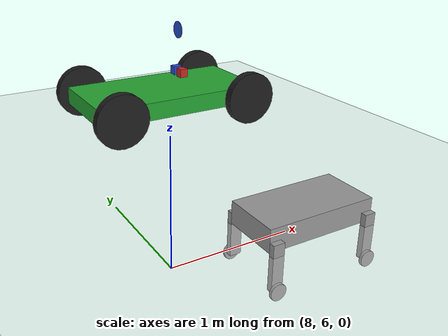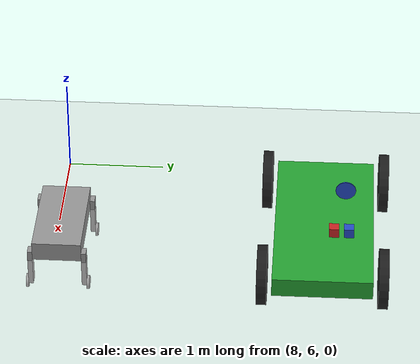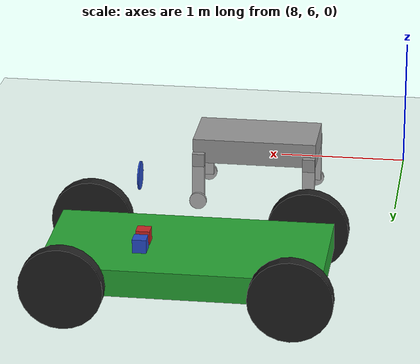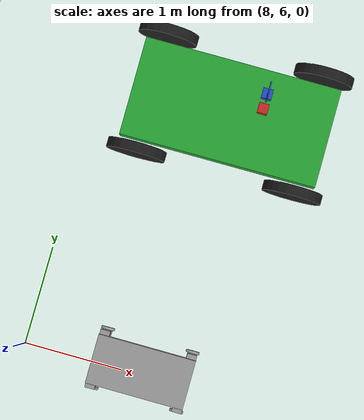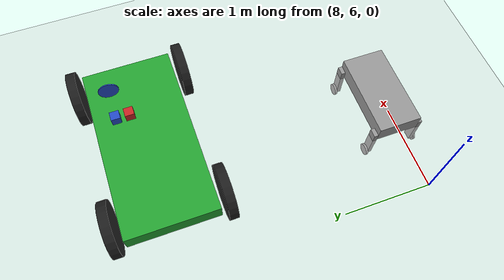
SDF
<sdf version="1.6">
 <world name="default">
  <model name="ground_plane">
   <static>1</static>
   <link name="link">
    <collision name="collision">
     <geometry><plane><normal>0 0 1</normal><size>1000 1000</size></plane></geometry>
     <surface>
      <contact><collide_bitmask>65535</collide_bitmask></contact>
      <friction><ode><mu>100</mu><mu2>50</mu2></ode></friction>
     </surface>
    </collision>
    <visual name="visual">
     <cast_shadows>0</cast_shadows>
     <geometry><plane><normal>0 0 1</normal><size>1000 1000</size></plane></geometry>
     <material>
      <script><uri>file://media/materials/scripts/gazebo.material</uri><name>Gazebo/Grey</name></script>
     </material>
    </visual>
   </link>
  </model>
  <model name="mybot_0">
   <link name="link_0">
    <pose>-1e-06 2e-06 0.2754 0 -0 0</pose>
    <inertial>
     <mass>1</mass>
     <inertia>
      <ixx>0.166667</ixx>
      <ixy>0</ixy>
      <ixz>0</ixz>
      <iyy>0.166667</iyy>
      <iyz>0</iyz>
      <izz>0.166667</izz>
     </inertia>
    </inertial>
    <visual name="visual">
     <geometry><box><size>1 0.5 0.2</size></box></geometry>
     <material>
      <lighting>1</lighting>
      <script><uri>file://media/materials/scripts/gazebo.material</uri><name>Gazebo/Grey</name></script>
      <shader type="pixel"><normal_map>__default__</normal_map></shader>
      <ambient>0.3 0.3 0.3 1</ambient>
      <diffuse>0.7 0.7 0.7 1</diffuse>
      <specular>0.01 0.01 0.01 1</specular>
      <emissive>0 0 0 1</emissive>
     </material>
    </visual>
    <collision name="collision">
     <geometry><box><size>1 0.5 0.2</size></box></geometry>
     <surface>
      <friction>
       <ode><mu>1</mu><mu2>1</mu2><fdir1>0 0 0</fdir1><slip1>0</slip1><slip2>0</slip2></ode>
       <torsional>
        <coefficient>1</coefficient>
        <patch_radius>0</patch_radius>
        <surface_radius>0</surface_radius>
        <use_patch_radius>1</use_patch_radius>
        <ode><slip>0</slip></ode>
       </torsional>
      </friction>
      <bounce><restitution_coefficient>0</restitution_coefficient><threshold>1e+06</threshold></bounce>
      <contact>
       <collide_without_contact>0</collide_without_contact>
       <collide_without_contact_bitmask>1</collide_without_contact_bitmask>
       <collide_bitmask>1</collide_bitmask>
       <ode>
        <soft_cfm>0</soft_cfm>
        <soft_erp>0.2</soft_erp>
        <kp>1e+13</kp>
        <kd>1</kd>
        <max_vel>0.01</max_vel>
        <min_depth>0</min_depth>
       </ode>
       <bullet>
        <split_impulse>1</split_impulse>
        <split_impulse_penetration_threshold>-0.01</split_impulse_penetration_threshold>
        <soft_cfm>0</soft_cfm>
        <soft_erp>0.2</soft_erp>
        <kp>1e+13</kp>
        <kd>1</kd>
       </bullet>
      </contact>
     </surface>
    </collision>
   </link>
   <link name="link_1_clone">
    <pose>-0.449999 -0.274998 0.065575 0 -0 0</pose>
    <inertial>
     <mass>1</mass>
     <inertia>
      <ixx>0.166667</ixx>
      <ixy>0</ixy>
      <ixz>0</ixz>
      <iyy>0.166667</iyy>
      <iyz>0</iyz>
      <izz>0.166667</izz>
     </inertia>
    </inertial>
    <visual name="visual">
     <geometry><box><size>0.1 0.05 0.4</size></box></geometry>
     <material>
      <lighting>1</lighting>
      <script><uri>file://media/materials/scripts/gazebo.material</uri><name>Gazebo/Grey</name></script>
      <shader type="pixel"><normal_map>__default__</normal_map></shader>
      <ambient>0.3 0.3 0.3 1</ambient>
      <diffuse>0.7 0.7 0.7 1</diffuse>
      <specular>0.01 0.01 0.01 1</specular>
      <emissive>0 0 0 1</emissive>
     </material>
    </visual>
    <collision name="collision">
     <geometry><box><size>0.1 0.05 0.4</size></box></geometry>
     <surface>
      <friction>
       <ode><mu>1</mu><mu2>1</mu2><fdir1>0 0 0</fdir1><slip1>0</slip1><slip2>0</slip2></ode>
       <torsional>
        <coefficient>1</coefficient>
        <patch_radius>0</patch_radius>
        <surface_radius>0</surface_radius>
        <use_patch_radius>1</use_patch_radius>
        <ode><slip>0</slip></ode>
       </torsional>
      </friction>
      <bounce><restitution_coefficient>0</restitution_coefficient><threshold>1e+06</threshold></bounce>
      <contact>
       <collide_without_contact>0</collide_without_contact>
       <collide_without_contact_bitmask>1</collide_without_contact_bitmask>
       <collide_bitmask>1</collide_bitmask>
       <ode>
        <soft_cfm>0</soft_cfm>
        <soft_erp>0.2</soft_erp>
        <kp>1e+13</kp>
        <kd>1</kd>
        <max_vel>0.01</max_vel>
        <min_depth>0</min_depth>
       </ode>
       <bullet>
        <split_impulse>1</split_impulse>
        <split_impulse_penetration_threshold>-0.01</split_impulse_penetration_threshold>
        <soft_cfm>0</soft_cfm>
        <soft_erp>0.2</soft_erp>
        <kp>1e+13</kp>
        <kd>1</kd>
       </bullet>
      </contact>
     </surface>
    </collision>
   </link>
   <link name="link_1_clone_clone">
    <pose>0.45 -0.274998 0.065575 0 -0 0</pose>
    <inertial>
     <mass>1</mass>
     <inertia>
      <ixx>0.166667</ixx>
      <ixy>0</ixy>
      <ixz>0</ixz>
      <iyy>0.166667</iyy>
      <iyz>0</iyz>
      <izz>0.166667</izz>
     </inertia>
    </inertial>
    <visual name="visual">
     <geometry><box><size>0.1 0.05 0.4</size></box></geometry>
     <material>
      <lighting>1</lighting>
      <script><uri>file://media/materials/scripts/gazebo.material</uri><name>Gazebo/Grey</name></script>
      <shader type="pixel"><normal_map>__default__</normal_map></shader>
      <ambient>0.3 0.3 0.3 1</ambient>
      <diffuse>0.7 0.7 0.7 1</diffuse>
      <specular>0.01 0.01 0.01 1</specular>
      <emissive>0 0 0 1</emissive>
     </material>
    </visual>
    <collision name="collision">
     <geometry><box><size>0.1 0.05 0.4</size></box></geometry>
     <surface>
      <friction>
       <ode><mu>1</mu><mu2>1</mu2><fdir1>0 0 0</fdir1><slip1>0</slip1><slip2>0</slip2></ode>
       <torsional>
        <coefficient>1</coefficient>
        <patch_radius>0</patch_radius>
        <surface_radius>0</surface_radius>
        <use_patch_radius>1</use_patch_radius>
        <ode><slip>0</slip></ode>
       </torsional>
      </friction>
      <bounce><restitution_coefficient>0</restitution_coefficient><threshold>1e+06</threshold></bounce>
      <contact>
       <collide_without_contact>0</collide_without_contact>
       <collide_without_contact_bitmask>1</collide_without_contact_bitmask>
       <collide_bitmask>1</collide_bitmask>
       <ode>
        <soft_cfm>0</soft_cfm>
        <soft_erp>0.2</soft_erp>
        <kp>1e+13</kp>
        <kd>1</kd>
        <max_vel>0.01</max_vel>
        <min_depth>0</min_depth>
       </ode>
       <bullet>
        <split_impulse>1</split_impulse>
        <split_impulse_penetration_threshold>-0.01</split_impulse_penetration_threshold>
        <soft_cfm>0</soft_cfm>
        <soft_erp>0.2</soft_erp>
        <kp>1e+13</kp>
        <kd>1</kd>
       </bullet>
      </contact>
     </surface>
    </collision>
   </link>
   <link name="link_1_clone_clone_clone">
    <pose>-0.450001 0.275002 0.065575 0 -0 0</pose>
    <inertial>
     <mass>1</mass>
     <inertia>
      <ixx>0.166667</ixx>
      <ixy>0</ixy>
      <ixz>0</ixz>
      <iyy>0.166667</iyy>
      <iyz>0</iyz>
      <izz>0.166667</izz>
     </inertia>
    </inertial>
    <visual name="visual">
     <geometry><box><size>0.1 0.05 0.4</size></box></geometry>
     <material>
      <lighting>1</lighting>
      <script><uri>file://media/materials/scripts/gazebo.material</uri><name>Gazebo/Grey</name></script>
      <shader type="pixel"><normal_map>__default__</normal_map></shader>
      <ambient>0.3 0.3 0.3 1</ambient>
      <diffuse>0.7 0.7 0.7 1</diffuse>
      <specular>0.01 0.01 0.01 1</specular>
      <emissive>0 0 0 1</emissive>
     </material>
    </visual>
    <collision name="collision">
     <geometry><box><size>0.1 0.05 0.4</size></box></geometry>
     <surface>
      <friction>
       <ode><mu>1</mu><mu2>1</mu2><fdir1>0 0 0</fdir1><slip1>0</slip1><slip2>0</slip2></ode>
       <torsional>
        <coefficient>1</coefficient>
        <patch_radius>0</patch_radius>
        <surface_radius>0</surface_radius>
        <use_patch_radius>1</use_patch_radius>
        <ode><slip>0</slip></ode>
       </torsional>
      </friction>
      <bounce><restitution_coefficient>0</restitution_coefficient><threshold>1e+06</threshold></bounce>
      <contact>
       <collide_without_contact>0</collide_without_contact>
       <collide_without_contact_bitmask>1</collide_without_contact_bitmask>
       <collide_bitmask>1</collide_bitmask>
       <ode>
        <soft_cfm>0</soft_cfm>
        <soft_erp>0.2</soft_erp>
        <kp>1e+13</kp>
        <kd>1</kd>
        <max_vel>0.01</max_vel>
        <min_depth>0</min_depth>
       </ode>
       <bullet>
        <split_impulse>1</split_impulse>
        <split_impulse_penetration_threshold>-0.01</split_impulse_penetration_threshold>
        <soft_cfm>0</soft_cfm>
        <soft_erp>0.2</soft_erp>
        <kp>1e+13</kp>
        <kd>1</kd>
       </bullet>
      </contact>
     </surface>
    </collision>
   </link>
   <link name="link_1_clone_clone_clone_clone">
    <pose>0.45 0.275002 0.065575 0 -0 0</pose>
    <inertial>
     <mass>1</mass>
     <inertia>
      <ixx>0.166667</ixx>
      <ixy>0</ixy>
      <ixz>0</ixz>
      <iyy>0.166667</iyy>
      <iyz>0</iyz>
      <izz>0.166667</izz>
     </inertia>
    </inertial>
    <visual name="visual">
     <geometry><box><size>0.1 0.05 0.4</size></box></geometry>
     <material>
      <lighting>1</lighting>
      <script><uri>file://media/materials/scripts/gazebo.material</uri><name>Gazebo/Grey</name></script>
      <shader type="pixel"><normal_map>__default__</normal_map></shader>
      <ambient>0.3 0.3 0.3 1</ambient>
      <diffuse>0.7 0.7 0.7 1</diffuse>
      <specular>0.01 0.01 0.01 1</specular>
      <emissive>0 0 0 1</emissive>
     </material>
    </visual>
    <collision name="collision">
     <geometry><box><size>0.1 0.05 0.4</size></box></geometry>
     <surface>
      <friction>
       <ode><mu>1</mu><mu2>1</mu2><fdir1>0 0 0</fdir1><slip1>0</slip1><slip2>0</slip2></ode>
       <torsional>
        <coefficient>1</coefficient>
        <patch_radius>0</patch_radius>
        <surface_radius>0</surface_radius>
        <use_patch_radius>1</use_patch_radius>
        <ode><slip>0</slip></ode>
       </torsional>
      </friction>
      <bounce><restitution_coefficient>0</restitution_coefficient><threshold>1e+06</threshold></bounce>
      <contact>
       <collide_without_contact>0</collide_without_contact>
       <collide_without_contact_bitmask>1</collide_without_contact_bitmask>
       <collide_bitmask>1</collide_bitmask>
       <ode>
        <soft_cfm>0</soft_cfm>
        <soft_erp>0.2</soft_erp>
        <kp>1e+13</kp>
        <kd>1</kd>
        <max_vel>0.01</max_vel>
        <min_depth>0</min_depth>
       </ode>
       <bullet>
        <split_impulse>1</split_impulse>
        <split_impulse_penetration_threshold>-0.01</split_impulse_penetration_threshold>
        <soft_cfm>0</soft_cfm>
        <soft_erp>0.2</soft_erp>
        <kp>1e+13</kp>
        <kd>1</kd>
       </bullet>
      </contact>
     </surface>
    </collision>
   </link>
   <link name="link_3_clone">
    <pose>0.45 0.312542 -0.134425 1.57 -0 0</pose>
    <inertial>
     <mass>1</mass>
     <inertia><ixx>0.145833</ixx><ixy>0</ixy><ixz>0</ixz><iyy>0.145833</iyy><iyz>0</iyz><izz>0.125</izz></inertia>
    </inertial>
    <visual name="visual">
     <geometry><cylinder><radius>0.07</radius><length>0.025</length></cylinder></geometry>
     <material>
      <lighting>1</lighting>
      <script><uri>file://media/materials/scripts/gazebo.material</uri><name>Gazebo/Grey</name></script>
      <shader type="pixel"><normal_map>__default__</normal_map></shader>
      <ambient>0.3 0.3 0.3 1</ambient>
      <diffuse>0.7 0.7 0.7 1</diffuse>
      <specular>0.01 0.01 0.01 1</specular>
      <emissive>0 0 0 1</emissive>
     </material>
    </visual>
    <collision name="collision">
     <geometry><cylinder><radius>0.07</radius><length>0.025</length></cylinder></geometry>
     <surface>
      <friction>
       <ode><mu>1</mu><mu2>1</mu2><fdir1>0 0 0</fdir1><slip1>0</slip1><slip2>0</slip2></ode>
       <torsional>
        <coefficient>1</coefficient>
        <patch_radius>0</patch_radius>
        <surface_radius>0</surface_radius>
        <use_patch_radius>1</use_patch_radius>
        <ode><slip>0</slip></ode>
       </torsional>
      </friction>
      <bounce><restitution_coefficient>0</restitution_coefficient><threshold>1e+06</threshold></bounce>
      <contact>
       <collide_without_contact>0</collide_without_contact>
       <collide_without_contact_bitmask>1</collide_without_contact_bitmask>
       <collide_bitmask>1</collide_bitmask>
       <ode>
        <soft_cfm>0</soft_cfm>
        <soft_erp>0.2</soft_erp>
        <kp>1e+13</kp>
        <kd>1</kd>
        <max_vel>0.01</max_vel>
        <min_depth>0</min_depth>
       </ode>
       <bullet>
        <split_impulse>1</split_impulse>
        <split_impulse_penetration_threshold>-0.01</split_impulse_penetration_threshold>
        <soft_cfm>0</soft_cfm>
        <soft_erp>0.2</soft_erp>
        <kp>1e+13</kp>
        <kd>1</kd>
       </bullet>
      </contact>
     </surface>
    </collision>
   </link>
   <link name="link_3_clone_clone">
    <pose>-0.450001 0.312558 -0.134425 1.57 -0 0</pose>
    <inertial>
     <mass>1</mass>
     <inertia><ixx>0.145833</ixx><ixy>0</ixy><ixz>0</ixz><iyy>0.145833</iyy><iyz>0</iyz><izz>0.125</izz></inertia>
    </inertial>
    <visual name="visual">
     <geometry><cylinder><radius>0.07</radius><length>0.025</length></cylinder></geometry>
     <material>
      <lighting>1</lighting>
      <script><uri>file://media/materials/scripts/gazebo.material</uri><name>Gazebo/Grey</name></script>
      <shader type="pixel"><normal_map>__default__</normal_map></shader>
      <ambient>0.3 0.3 0.3 1</ambient>
      <diffuse>0.7 0.7 0.7 1</diffuse>
      <specular>0.01 0.01 0.01 1</specular>
      <emissive>0 0 0 1</emissive>
     </material>
    </visual>
    <collision name="collision">
     <geometry><cylinder><radius>0.07</radius><length>0.025</length></cylinder></geometry>
     <surface>
      <friction>
       <ode><mu>1</mu><mu2>1</mu2><fdir1>0 0 0</fdir1><slip1>0</slip1><slip2>0</slip2></ode>
       <torsional>
        <coefficient>1</coefficient>
        <patch_radius>0</patch_radius>
        <surface_radius>0</surface_radius>
        <use_patch_radius>1</use_patch_radius>
        <ode><slip>0</slip></ode>
       </torsional>
      </friction>
      <bounce><restitution_coefficient>0</restitution_coefficient><threshold>1e+06</threshold></bounce>
      <contact>
       <collide_without_contact>0</collide_without_contact>
       <collide_without_contact_bitmask>1</collide_without_contact_bitmask>
       <collide_bitmask>1</collide_bitmask>
       <ode>
        <soft_cfm>0</soft_cfm>
        <soft_erp>0.2</soft_erp>
        <kp>1e+13</kp>
        <kd>1</kd>
        <max_vel>0.01</max_vel>
        <min_depth>0</min_depth>
       </ode>
       <bullet>
        <split_impulse>1</split_impulse>
        <split_impulse_penetration_threshold>-0.01</split_impulse_penetration_threshold>
        <soft_cfm>0</soft_cfm>
        <soft_erp>0.2</soft_erp>
        <kp>1e+13</kp>
        <kd>1</kd>
       </bullet>
      </contact>
     </surface>
    </collision>
   </link>
   <link name="link_3_clone_clone_0">
    <pose>0.45 -0.312554 -0.134425 1.57 -0 0</pose>
    <inertial>
     <mass>1</mass>
     <inertia><ixx>0.145833</ixx><ixy>0</ixy><ixz>0</ixz><iyy>0.145833</iyy><iyz>0</iyz><izz>0.125</izz></inertia>
    </inertial>
    <visual name="visual">
     <geometry><cylinder><radius>0.07</radius><length>0.025</length></cylinder></geometry>
     <material>
      <lighting>1</lighting>
      <script><uri>file://media/materials/scripts/gazebo.material</uri><name>Gazebo/Grey</name></script>
      <shader type="pixel"><normal_map>__default__</normal_map></shader>
      <ambient>0.3 0.3 0.3 1</ambient>
      <diffuse>0.7 0.7 0.7 1</diffuse>
      <specular>0.01 0.01 0.01 1</specular>
      <emissive>0 0 0 1</emissive>
     </material>
    </visual>
    <collision name="collision">
     <geometry><cylinder><radius>0.07</radius><length>0.025</length></cylinder></geometry>
     <surface>
      <friction>
       <ode><mu>1</mu><mu2>1</mu2><fdir1>0 0 0</fdir1><slip1>0</slip1><slip2>0</slip2></ode>
       <torsional>
        <coefficient>1</coefficient>
        <patch_radius>0</patch_radius>
        <surface_radius>0</surface_radius>
        <use_patch_radius>1</use_patch_radius>
        <ode><slip>0</slip></ode>
       </torsional>
      </friction>
      <bounce><restitution_coefficient>0</restitution_coefficient><threshold>1e+06</threshold></bounce>
      <contact>
       <collide_without_contact>0</collide_without_contact>
       <collide_without_contact_bitmask>1</collide_without_contact_bitmask>
       <collide_bitmask>1</collide_bitmask>
       <ode>
        <soft_cfm>0</soft_cfm>
        <soft_erp>0.2</soft_erp>
        <kp>1e+13</kp>
        <kd>1</kd>
        <max_vel>0.01</max_vel>
        <min_depth>0</min_depth>
       </ode>
       <bullet>
        <split_impulse>1</split_impulse>
        <split_impulse_penetration_threshold>-0.01</split_impulse_penetration_threshold>
        <soft_cfm>0</soft_cfm>
        <soft_erp>0.2</soft_erp>
        <kp>1e+13</kp>
        <kd>1</kd>
       </bullet>
      </contact>
     </surface>
    </collision>
   </link>
   <link name="link_3_clone_clone_0_clone">
    <pose>-0.449999 -0.312553 -0.134425 1.57 -0 0</pose>
    <inertial>
     <mass>1</mass>
     <inertia><ixx>0.145833</ixx><ixy>0</ixy><ixz>0</ixz><iyy>0.145833</iyy><iyz>0</iyz><izz>0.125</izz></inertia>
    </inertial>
    <visual name="visual">
     <geometry><cylinder><radius>0.07</radius><length>0.025</length></cylinder></geometry>
     <material>
      <lighting>1</lighting>
      <script><uri>file://media/materials/scripts/gazebo.material</uri><name>Gazebo/Grey</name></script>
      <shader type="pixel"><normal_map>__default__</normal_map></shader>
      <ambient>0.3 0.3 0.3 1</ambient>
      <diffuse>0.7 0.7 0.7 1</diffuse>
      <specular>0.01 0.01 0.01 1</specular>
      <emissive>0 0 0 1</emissive>
     </material>
    </visual>
    <collision name="collision">
     <geometry><cylinder><radius>0.07</radius><length>0.025</length></cylinder></geometry>
     <surface>
      <friction>
       <ode><mu>1</mu><mu2>1</mu2><fdir1>0 0 0</fdir1><slip1>0</slip1><slip2>0</slip2></ode>
       <torsional>
        <coefficient>1</coefficient>
        <patch_radius>0</patch_radius>
        <surface_radius>0</surface_radius>
        <use_patch_radius>1</use_patch_radius>
        <ode><slip>0</slip></ode>
       </torsional>
      </friction>
      <bounce><restitution_coefficient>0</restitution_coefficient><threshold>1e+06</threshold></bounce>
      <contact>
       <collide_without_contact>0</collide_without_contact>
       <collide_without_contact_bitmask>1</collide_without_contact_bitmask>
       <collide_bitmask>1</collide_bitmask>
       <ode>
        <soft_cfm>0</soft_cfm>
        <soft_erp>0.2</soft_erp>
        <kp>1e+13</kp>
        <kd>1</kd>
        <max_vel>0.01</max_vel>
        <min_depth>0</min_depth>
       </ode>
       <bullet>
        <split_impulse>1</split_impulse>
        <split_impulse_penetration_threshold>-0.01</split_impulse_penetration_threshold>
        <soft_cfm>0</soft_cfm>
        <soft_erp>0.2</soft_erp>
        <kp>1e+13</kp>
        <kd>1</kd>
       </bullet>
      </contact>
     </surface>
    </collision>
   </link>
   <joint name="link_0_JOINT_1" type="revolute">
    <parent>link_0</parent>
    <child>link_1_clone</child>
    <pose>0 0 0.15 0 -0 0</pose>
    <axis>
     <xyz>0 1 0</xyz>
     <use_parent_model_frame>0</use_parent_model_frame>
     <limit>
      <lower>-1.79769e+308</lower>
      <upper>1.79769e+308</upper>
      <effort>-1</effort>
      <velocity>-1</velocity>
     </limit>
     <dynamics>
      <spring_reference>0</spring_reference>
      <spring_stiffness>0</spring_stiffness>
      <damping>0</damping>
      <friction>0</friction>
     </dynamics>
    </axis>
    <physics>
     <ode><limit><cfm>0</cfm><erp>0.2</erp></limit><suspension><cfm>0</cfm><erp>0.2</erp></suspension></ode>
    </physics>
   </joint>
   <joint name="link_0_JOINT_3" type="revolute">
    <parent>link_0</parent>
    <child>link_1_clone_clone</child>
    <pose>0 0 0.15 0 -0 0</pose>
    <axis>
     <xyz>0 1 0</xyz>
     <use_parent_model_frame>0</use_parent_model_frame>
     <limit>
      <lower>-1.79769e+308</lower>
      <upper>1.79769e+308</upper>
      <effort>-1</effort>
      <velocity>-1</velocity>
     </limit>
     <dynamics>
      <spring_reference>0</spring_reference>
      <spring_stiffness>0</spring_stiffness>
      <damping>0</damping>
     </dynamics>
    </axis>
    <physics>
     <ode><limit><cfm>0</cfm><erp>0.2</erp></limit><suspension><cfm>0</cfm><erp>0.2</erp></suspension></ode>
    </physics>
   </joint>
   <joint name="link_0_JOINT_4" type="revolute">
    <parent>link_0</parent>
    <child>link_1_clone_clone_clone</child>
    <pose>0 0 0.15 0 -0 0</pose>
    <axis>
     <xyz>0 -1 0</xyz>
     <use_parent_model_frame>0</use_parent_model_frame>
     <limit>
      <lower>-1.79769e+308</lower>
      <upper>1.79769e+308</upper>
      <effort>-1</effort>
      <velocity>-1</velocity>
     </limit>
     <dynamics>
      <spring_reference>0</spring_reference>
      <spring_stiffness>0</spring_stiffness>
      <damping>0</damping>
     </dynamics>
    </axis>
    <physics>
     <ode><limit><cfm>0</cfm><erp>0.2</erp></limit><suspension><cfm>0</cfm><erp>0.2</erp></suspension></ode>
    </physics>
   </joint>
   <joint name="link_0_JOINT_5" type="revolute">
    <parent>link_0</parent>
    <child>link_1_clone_clone_clone_clone</child>
    <pose>0 0 0.15 0 -0 0</pose>
    <axis>
     <xyz>0 -1 0</xyz>
     <use_parent_model_frame>0</use_parent_model_frame>
     <limit>
      <lower>-1.79769e+308</lower>
      <upper>1.79769e+308</upper>
      <effort>-1</effort>
      <velocity>-1</velocity>
     </limit>
     <dynamics>
      <spring_reference>0</spring_reference>
      <spring_stiffness>0</spring_stiffness>
      <damping>0</damping>
     </dynamics>
    </axis>
    <physics>
     <ode><limit><cfm>0</cfm><erp>0.2</erp></limit><suspension><cfm>0</cfm><erp>0.2</erp></suspension></ode>
    </physics>
   </joint>
   <joint name="link_1_clone_JOINT_9" type="revolute">
    <parent>link_1_clone</parent>
    <child>link_3_clone_clone_0_clone</child>
    <axis>
     <xyz>0 0 -1</xyz>
     <use_parent_model_frame>0</use_parent_model_frame>
     <limit>
      <lower>-1.79769e+308</lower>
      <upper>1.79769e+308</upper>
      <effort>-1</effort>
      <velocity>-1</velocity>
     </limit>
     <dynamics>
      <spring_reference>0</spring_reference>
      <spring_stiffness>0</spring_stiffness>
      <damping>0</damping>
     </dynamics>
    </axis>
    <physics>
     <ode><limit><cfm>0</cfm><erp>0.2</erp></limit><suspension><cfm>0</cfm><erp>0.2</erp></suspension></ode>
    </physics>
   </joint>
   <joint name="link_1_clone_clone_JOINT_8" type="revolute">
    <parent>link_1_clone_clone</parent>
    <child>link_3_clone_clone_0</child>
    <axis>
     <xyz>0 0 -1</xyz>
     <use_parent_model_frame>0</use_parent_model_frame>
     <limit>
      <lower>-1.79769e+308</lower>
      <upper>1.79769e+308</upper>
      <effort>-1</effort>
      <velocity>-1</velocity>
     </limit>
     <dynamics>
      <spring_reference>0</spring_reference>
      <spring_stiffness>0</spring_stiffness>
      <damping>0</damping>
     </dynamics>
    </axis>
    <physics>
     <ode><limit><cfm>0</cfm><erp>0.2</erp></limit><suspension><cfm>0</cfm><erp>0.2</erp></suspension></ode>
    </physics>
   </joint>
   <joint name="link_1_clone_clone_clone_JOINT_7" type="revolute">
    <parent>link_1_clone_clone_clone</parent>
    <child>link_3_clone_clone</child>
    <axis>
     <xyz>0 0 1</xyz>
     <use_parent_model_frame>0</use_parent_model_frame>
     <limit>
      <lower>-1.79769e+308</lower>
      <upper>1.79769e+308</upper>
      <effort>-1</effort>
      <velocity>-1</velocity>
     </limit>
     <dynamics>
      <spring_reference>0</spring_reference>
      <spring_stiffness>0</spring_stiffness>
      <damping>0</damping>
     </dynamics>
    </axis>
    <physics>
     <ode><limit><cfm>0</cfm><erp>0.2</erp></limit><suspension><cfm>0</cfm><erp>0.2</erp></suspension></ode>
    </physics>
   </joint>
   <joint name="link_1_clone_clone_clone_clone_JOINT_6" type="revolute">
    <parent>link_1_clone_clone_clone_clone</parent>
    <child>link_3_clone</child>
    <axis>
     <xyz>0 0 1</xyz>
     <use_parent_model_frame>0</use_parent_model_frame>
     <limit>
      <lower>-1.79769e+308</lower>
      <upper>1.79769e+308</upper>
      <effort>-1</effort>
      <velocity>-1</velocity>
     </limit>
     <dynamics>
      <spring_reference>0</spring_reference>
      <spring_stiffness>0</spring_stiffness>
      <damping>0</damping>
      <friction>0</friction>
     </dynamics>
    </axis>
    <physics>
     <ode><limit><cfm>0</cfm><erp>0.2</erp></limit><suspension><cfm>0</cfm><erp>0.2</erp></suspension></ode>
    </physics>
   </joint>
   <static>0</static>
   <pose>9.19566 6.04445 -0.16313 -1e-06 -0 -0.001037</pose>
  </model>
  <model name="car">
   <link name="chassis">
    <pose>0 0 0.3 0 -0 0</pose>
    <collision name="collision"><geometry><box><size>2 1 0.2</size></box></geometry></collision>
    <visual name="visual">
     <geometry><box><size>2 1 0.2</size></box></geometry>
     <material>
      <script><uri>file://media/materials/scripts/gazebo.material</uri><name>Gazebo/Green</name></script>
     </material>
    </visual>
    <inertial>
     <inertia><ixx>1</ixx><ixy>0</ixy><ixz>0</ixz><iyy>1</iyy><iyz>0</iyz><izz>1</izz></inertia>
     <mass>1</mass>
    </inertial>
   </link>
   <link name="front_left_wheel">
    <pose>0.8 0.6 0.3 -0 1.5707 1.5707</pose>
    <collision name="collision">
     <geometry><cylinder><radius>0.3</radius><length>0.1</length></cylinder></geometry>
    </collision>
    <visual name="visual">
     <geometry><cylinder><radius>0.3</radius><length>0.1</length></cylinder></geometry>
     <material>
      <script><uri>file://media/materials/scripts/gazebo.material</uri><name>Gazebo/Black</name></script>
     </material>
    </visual>
    <inertial>
     <inertia><ixx>1</ixx><ixy>0</ixy><ixz>0</ixz><iyy>1</iyy><iyz>0</iyz><izz>1</izz></inertia>
     <mass>1</mass>
    </inertial>
   </link>
   <link name="front_right_wheel">
    <pose>0.8 -0.6 0.3 -0 1.5707 1.5707</pose>
    <collision name="collision">
     <geometry><cylinder><radius>0.3</radius><length>0.1</length></cylinder></geometry>
    </collision>
    <visual name="visual">
     <geometry><cylinder><radius>0.3</radius><length>0.1</length></cylinder></geometry>
     <material>
      <script><uri>file://media/materials/scripts/gazebo.material</uri><name>Gazebo/Black</name></script>
     </material>
    </visual>
    <inertial>
     <inertia><ixx>1</ixx><ixy>0</ixy><ixz>0</ixz><iyy>1</iyy><iyz>0</iyz><izz>1</izz></inertia>
     <mass>1</mass>
    </inertial>
   </link>
   <link name="back_right_wheel">
    <pose>-0.8 -0.6 0.3 -0 1.5707 1.5707</pose>
    <collision name="collision">
     <geometry><cylinder><radius>0.3</radius><length>0.1</length></cylinder></geometry>
    </collision>
    <visual name="visual">
     <geometry><cylinder><radius>0.3</radius><length>0.1</length></cylinder></geometry>
     <material>
      <script><uri>file://media/materials/scripts/gazebo.material</uri><name>Gazebo/Black</name></script>
     </material>
    </visual>
    <inertial>
     <inertia><ixx>1</ixx><ixy>0</ixy><ixz>0</ixz><iyy>1</iyy><iyz>0</iyz><izz>1</izz></inertia>
     <mass>1</mass>
    </inertial>
   </link>
   <link name="back_left_wheel">
    <pose>-0.8 0.6 0.3 -0 1.5707 1.5707</pose>
    <collision name="collision">
     <geometry><cylinder><radius>0.3</radius><length>0.1</length></cylinder></geometry>
    </collision>
    <visual name="visual">
     <geometry><cylinder><radius>0.3</radius><length>0.1</length></cylinder></geometry>
     <material>
      <script><uri>file://media/materials/scripts/gazebo.material</uri><name>Gazebo/Black</name></script>
     </material>
    </visual>
    <inertial>
     <inertia><ixx>1</ixx><ixy>0</ixy><ixz>0</ixz><iyy>1</iyy><iyz>0</iyz><izz>1</izz></inertia>
     <mass>1</mass>
    </inertial>
   </link>
   <link name="gas_pedal">
    <pose>0.3 0.1 0.5 0 -0 0</pose>
    <collision name="collision"><geometry><box><size>0.1 0.1 0.1</size></box></geometry></collision>
    <visual name="visual">
     <geometry><box><size>0.1 0.1 0.1</size></box></geometry>
     <material>
      <script><uri>file://media/materials/scripts/gazebo.material</uri><name>Gazebo/Red</name></script>
     </material>
    </visual>
    <inertial>
     <inertia><ixx>1</ixx><ixy>0</ixy><ixz>0</ixz><iyy>1</iyy><iyz>0</iyz><izz>1</izz></inertia>
     <mass>1</mass>
    </inertial>
   </link>
   <link name="brake_pedal">
    <pose>0.3 0.25 0.5 0 -0 0</pose>
    <collision name="collision"><geometry><box><size>0.1 0.1 0.1</size></box></geometry></collision>
    <visual name="visual">
     <geometry><box><size>0.1 0.1 0.1</size></box></geometry>
     <material>
      <script><uri>file://media/materials/scripts/gazebo.material</uri><name>Gazebo/Blue</name></script>
     </material>
    </visual>
    <inertial>
     <inertia><ixx>1</ixx><ixy>0</ixy><ixz>0</ixz><iyy>1</iyy><iyz>0</iyz><izz>1</izz></inertia>
     <mass>1</mass>
    </inertial>
   </link>
   <link name="steering_wheel">
    <pose>0.3 0.2 1 0 1.5707 0</pose>
    <collision name="collision">
     <geometry><cylinder><radius>0.1</radius><length>0.01</length></cylinder></geometry>
    </collision>
    <visual name="visual">
     <geometry><cylinder><radius>0.1</radius><length>0.01</length></cylinder></geometry>
     <material>
      <script><uri>file://media/materials/scripts/gazebo.material</uri><name>Gazebo/Blue</name></script>
     </material>
    </visual>
    <inertial>
     <inertia><ixx>1</ixx><ixy>0</ixy><ixz>0</ixz><iyy>1</iyy><iyz>0</iyz><izz>1</izz></inertia>
     <mass>1</mass>
    </inertial>
   </link>
   <joint name="gas_joint" type="prismatic">
    <parent>chassis</parent>
    <child>gas_pedal</child>
    <axis>
     <xyz>1 0 0</xyz>
     <limit><lower>0</lower><upper>0.2</upper></limit>
     <use_parent_model_frame>1</use_parent_model_frame>
     <dynamics><spring_reference>0</spring_reference><spring_stiffness>0</spring_stiffness></dynamics>
    </axis>
   </joint>
   <joint name="brake_joint" type="prismatic">
    <parent>chassis</parent>
    <child>brake_pedal</child>
    <axis>
     <xyz>1 0 0</xyz>
     <limit><lower>0</lower><upper>0.2</upper></limit>
     <use_parent_model_frame>1</use_parent_model_frame>
     <dynamics><spring_reference>0</spring_reference><spring_stiffness>0</spring_stiffness></dynamics>
    </axis>
   </joint>
   <joint name="steering_joint" type="revolute">
    <parent>chassis</parent>
    <child>steering_wheel</child>
    <axis>
     <xyz>1 0 0</xyz>
     <limit><lower>-7.853</lower><upper>7.853</upper></limit>
     <use_parent_model_frame>1</use_parent_model_frame>
     <dynamics><spring_reference>0</spring_reference><spring_stiffness>0</spring_stiffness></dynamics>
    </axis>
   </joint>
   <joint name="front_left_joint" type="revolute2">
    <parent>chassis</parent>
    <child>front_left_wheel</child>
    <axis>
     <xyz>0 0 1</xyz>
     <limit><lower>8.33822e-06</lower><upper>8.33822e-06</upper></limit>
     <use_parent_model_frame>1</use_parent_model_frame>
     <dynamics><spring_reference>0</spring_reference><spring_stiffness>0</spring_stiffness></dynamics>
    </axis>
    <axis2>
     <xyz>0 1 0</xyz>
     <use_parent_model_frame>1</use_parent_model_frame>
     <dynamics><spring_reference>0</spring_reference><spring_stiffness>0</spring_stiffness></dynamics>
    </axis2>
    <physics><ode><limit><cfm>0</cfm><erp>0.9</erp></limit></ode></physics>
   </joint>
   <joint name="front_right_joint" type="revolute2">
    <parent>chassis</parent>
    <child>front_right_wheel</child>
    <axis>
     <xyz>0 0 1</xyz>
     <limit><lower>8.33822e-06</lower><upper>8.33822e-06</upper></limit>
     <use_parent_model_frame>1</use_parent_model_frame>
     <dynamics><spring_reference>0</spring_reference><spring_stiffness>0</spring_stiffness></dynamics>
    </axis>
    <axis2>
     <xyz>0 1 0</xyz>
     <use_parent_model_frame>1</use_parent_model_frame>
     <dynamics><spring_reference>0</spring_reference><spring_stiffness>0</spring_stiffness></dynamics>
    </axis2>
    <physics><ode><limit><cfm>0</cfm><erp>0.9</erp></limit></ode></physics>
   </joint>
   <joint name="back_right_joint" type="revolute2">
    <parent>chassis</parent>
    <child>back_right_wheel</child>
    <axis>
     <xyz>0 0 1</xyz>
     <limit><lower>0</lower><upper>0</upper></limit>
     <use_parent_model_frame>1</use_parent_model_frame>
     <dynamics><spring_reference>0</spring_reference><spring_stiffness>0</spring_stiffness></dynamics>
    </axis>
    <axis2>
     <xyz>0 1 0</xyz>
     <use_parent_model_frame>1</use_parent_model_frame>
     <dynamics><spring_reference>0</spring_reference><spring_stiffness>0</spring_stiffness></dynamics>
    </axis2>
    <physics><ode><limit><cfm>0</cfm><erp>0.9</erp></limit></ode></physics>
   </joint>
   <joint name="back_left_joint" type="revolute2">
    <parent>chassis</parent>
    <child>back_left_wheel</child>
    <axis>
     <xyz>0 0 1</xyz>
     <limit><lower>0</lower><upper>0</upper></limit>
     <use_parent_model_frame>1</use_parent_model_frame>
     <dynamics><spring_reference>0</spring_reference><spring_stiffness>0</spring_stiffness></dynamics>
    </axis>
    <axis2>
     <xyz>0 1 0</xyz>
     <use_parent_model_frame>1</use_parent_model_frame>
     <dynamics><spring_reference>0</spring_reference><spring_stiffness>0</spring_stiffness></dynamics>
    </axis2>
    <physics><ode><limit><cfm>0</cfm><erp>0.9</erp></limit></ode></physics>
   </joint>
   <plugin name="vehicle" filename="libVehiclePlugin.so">
    <front_left>front_left_joint</front_left>
    <front_right>front_right_joint</front_right>
    <back_left>back_left_joint</back_left>
    <back_right>back_right_joint</back_right>
    <gas>gas_joint</gas>
    <brake>brake_joint</brake>
    <steering>steering_joint</steering>
    <front_power>10</front_power>
    <rear_power>10</rear_power>
    <tire_angle_range>0.5</tire_angle_range>
    <max_speed>10</max_speed>
    <aero_load>0.1</aero_load>
   </plugin>
   <pose>9.36268 8.75322 -0.002615 -0.000273 0.000907 0.001617</pose>
  </model>
 </world>
</sdf>
